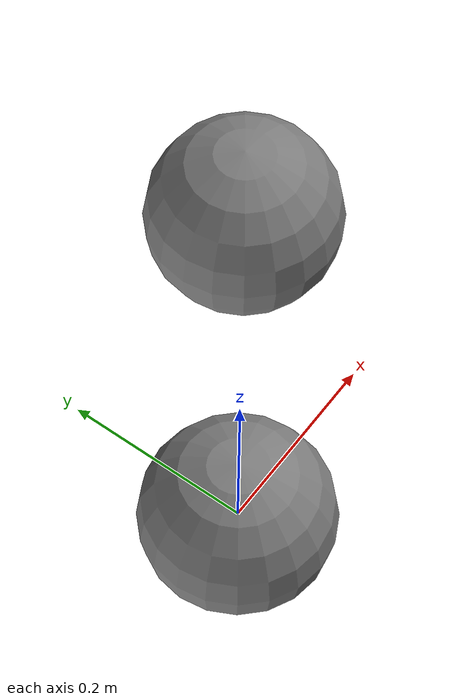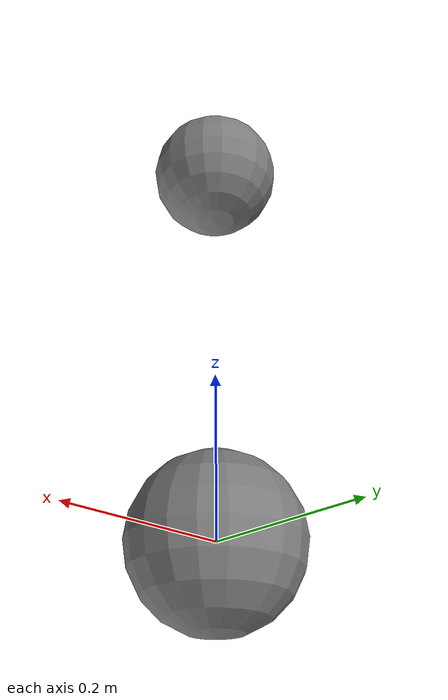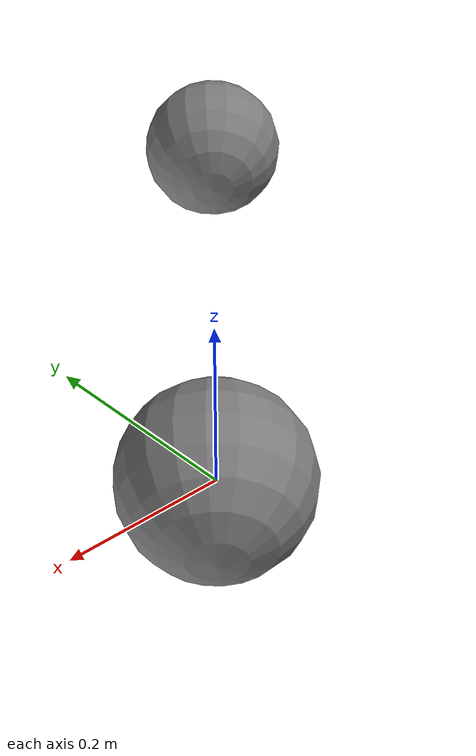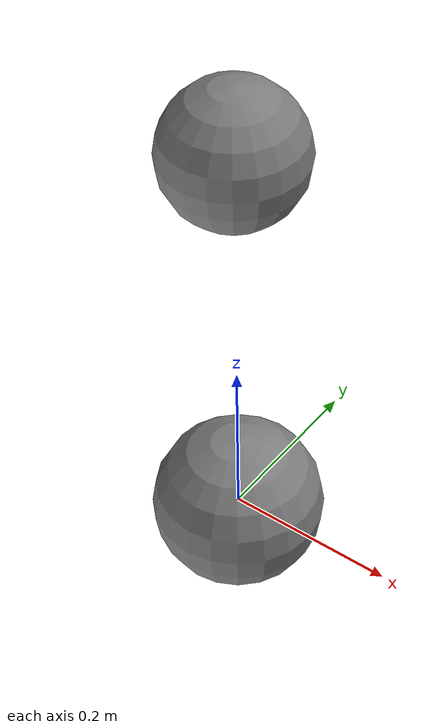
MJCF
<mujoco>
                <compiler angle="radian" fusestatic="true"/>
                <worldbody>
                    <body name="base" pos="0 0 0">
                        <joint name="j1" type="hinge" axis="0 0 1"/>
                        <geom type="sphere" size="0.1"/>
                        <body name="link" pos="0 0 0.5">
                            <joint name="j2" type="hinge" axis="0 1 0"/>
                            <geom type="sphere" size="0.08"/>
                        </body>
                    </body>
                </worldbody>
            </mujoco>
